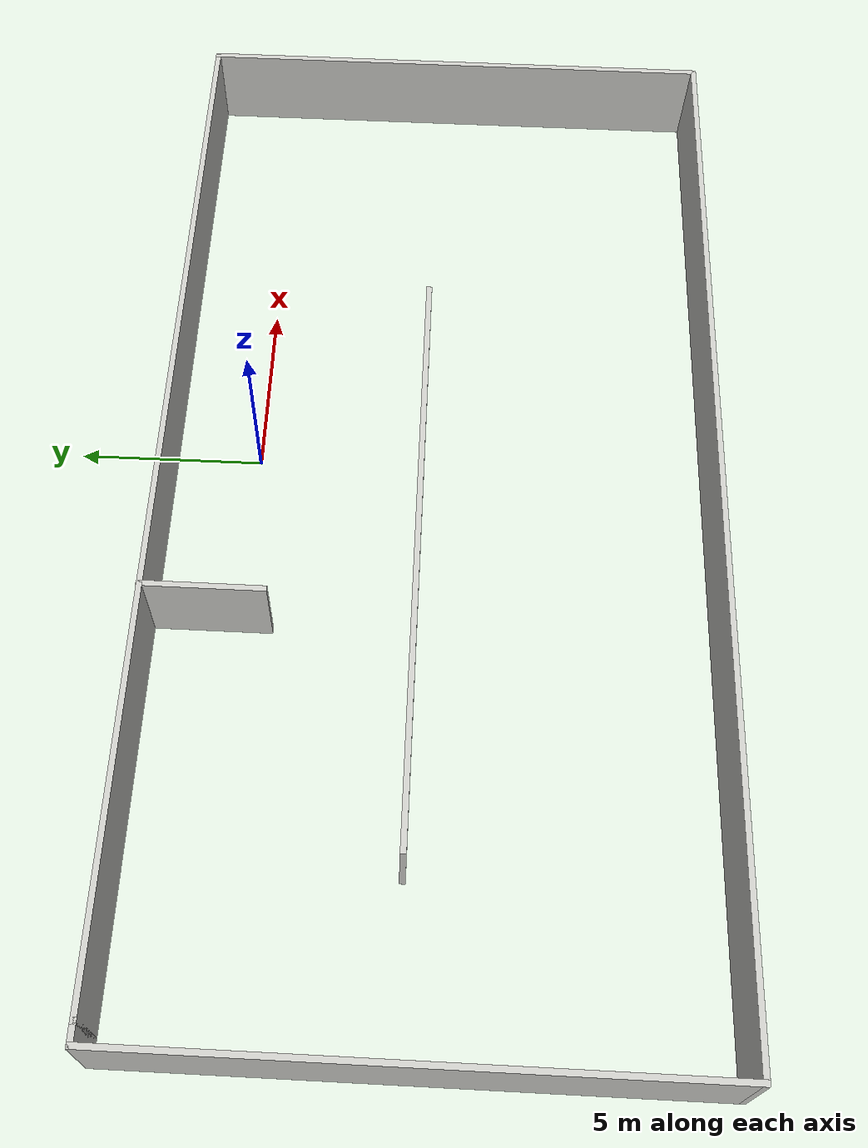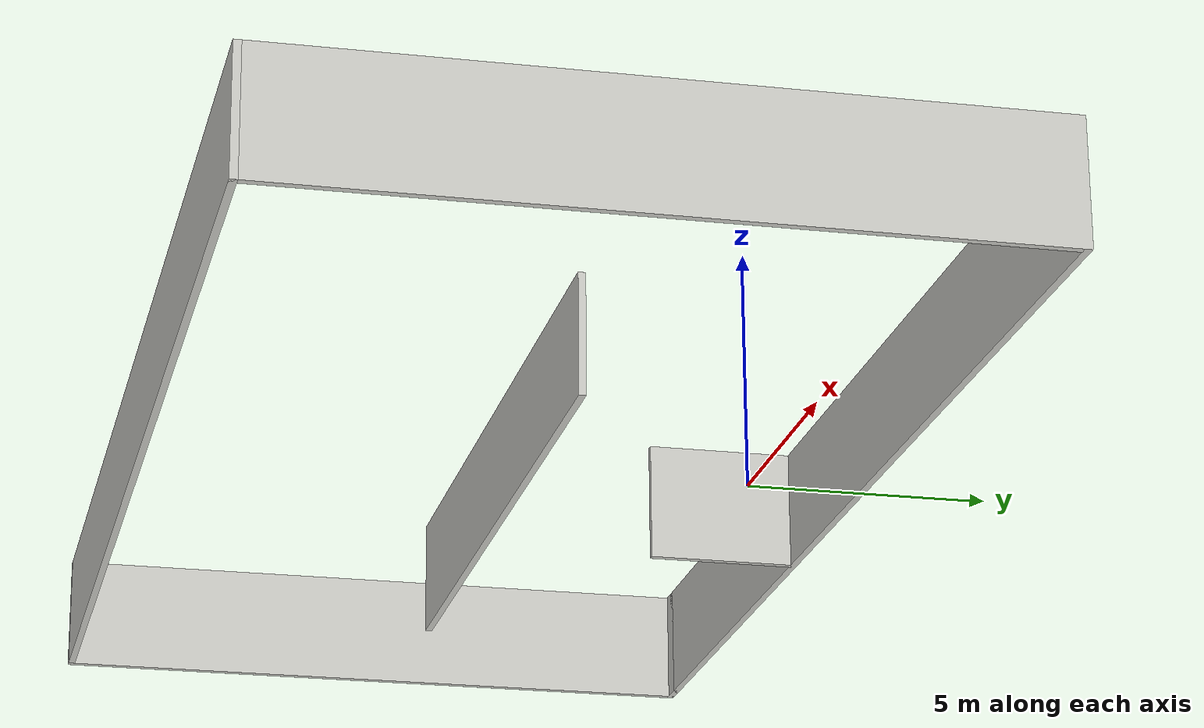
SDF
<?xml version='1.0'?>
<sdf version='1.6'>
  <model name='iwt'>
    <pose frame=''>-1.38186 -4.90432 0 0 -0 0</pose>
    <link name='Wall_10'>
      <collision name='Wall_10_Collision'>
        <geometry>
          <box>
            <size>14.75 0.15 2.5</size>
          </box>
        </geometry>
        <pose frame=''>0 0 1.25 0 -0 0</pose>
      </collision>
      <visual name='Wall_10_Visual'>
        <pose frame=''>0 0 1.25 0 -0 0</pose>
        <geometry>
          <box>
            <size>14.75 0.15 2.5</size>
          </box>
        </geometry>
        <material>
          <script>
            <uri>file://media/materials/scripts/gazebo.material</uri>
            <name>Gazebo/CeilingTiled</name>
          </script>
          <ambient>1 1 1 1</ambient>
        </material>
      </visual>
      <pose frame=''>-14.55 -0.004954 0 0 -0 1.5708</pose>
    </link>
    <link name='Wall_11'>
      <collision name='Wall_11_Collision'>
        <geometry>
          <box>
            <size>0.65 0.15 2.5</size>
          </box>
        </geometry>
        <pose frame=''>0 0 1.25 0 -0 0</pose>
      </collision>
      <visual name='Wall_11_Visual'>
        <pose frame=''>0 0 1.25 0 -0 0</pose>
        <geometry>
          <box>
            <size>0.65 0.15 2.5</size>
          </box>
        </geometry>
        <material>
          <script>
            <uri>file://media/materials/scripts/gazebo.material</uri>
            <name>Gazebo/CeilingTiled</name>
          </script>
          <ambient>1 1 1 1</ambient>
        </material>
      </visual>
      <pose frame=''>-14.3 7.29505 0 0 -0 0</pose>
    </link>
    <link name='Wall_17'>
      <collision name='Wall_17_Collision'>
        <geometry>
          <box>
            <size>16 0.15 2.5</size>
          </box>
        </geometry>
        <pose frame=''>0 0 1.25 0 -0 0</pose>
      </collision>
      <visual name='Wall_17_Visual'>
        <pose frame=''>0 0 1.25 0 -0 0</pose>
        <geometry>
          <box>
            <size>16 0.15 2.5</size>
          </box>
        </geometry>
        <material>
          <script>
            <uri>file://media/materials/scripts/gazebo.material</uri>
            <name>Gazebo/CeilingTiled</name>
          </script>
          <ambient>1 1 1 1</ambient>
        </material>
      </visual>
      <pose frame=''>-2.12058 0.465939 0 0 -0 0</pose>
    </link>
    <link name='Wall_20'>
      <collision name='Wall_20_Collision'>
        <geometry>
          <box>
            <size>3.25 0.15 2.5</size>
          </box>
        </geometry>
        <pose frame=''>0 0 1.25 0 -0 0</pose>
      </collision>
      <visual name='Wall_20_Visual'>
        <pose frame=''>0 0 1.25 0 -0 0</pose>
        <geometry>
          <box>
            <size>3.25 0.15 2.5</size>
          </box>
        </geometry>
        <material>
          <script>
            <uri>file://media/materials/scripts/gazebo.material</uri>
            <name>Gazebo/CeilingTiled</name>
          </script>
          <ambient>1 1 1 1</ambient>
        </material>
      </visual>
      <pose frame=''>-3.6718 5.75495 0 0 0 -1.5708</pose>
    </link>
    <link name='Wall_3'>
      <collision name='Wall_3_Collision'>
        <geometry>
          <box>
            <size>28.75 0.15 2.5</size>
          </box>
        </geometry>
        <pose frame=''>0 0 1.25 0 -0 0</pose>
      </collision>
      <visual name='Wall_3_Visual'>
        <pose frame=''>0 0 1.25 0 -0 0</pose>
        <geometry>
          <box>
            <size>28.75 0.15 2.5</size>
          </box>
        </geometry>
        <material>
          <script>
            <uri>file://media/materials/scripts/gazebo.material</uri>
            <name>Gazebo/CeilingTiled</name>
          </script>
          <ambient>1 1 1 1</ambient>
        </material>
      </visual>
      <pose frame=''>0.25 7.29505 0 0 -0 0</pose>
    </link>
    <link name='Wall_8'>
      <collision name='Wall_8_Collision'>
        <geometry>
          <box>
            <size>14.75 0.15 2.5</size>
          </box>
        </geometry>
        <pose frame=''>0 0 1.25 0 -0 0</pose>
      </collision>
      <visual name='Wall_8_Visual'>
        <pose frame=''>0 0 1.25 0 -0 0</pose>
        <geometry>
          <box>
            <size>14.75 0.15 2.5</size>
          </box>
        </geometry>
        <material>
          <script>
            <uri>file://media/materials/scripts/gazebo.material</uri>
            <name>Gazebo/CeilingTiled</name>
          </script>
          <ambient>1 1 1 1</ambient>
        </material>
      </visual>
      <pose frame=''>14.55 -0.004954 0 0 0 -1.5708</pose>
    </link>
    <link name='Wall_9'>
      <collision name='Wall_9_Collision'>
        <geometry>
          <box>
            <size>29.25 0.15 2.5</size>
          </box>
        </geometry>
        <pose frame=''>0 0 1.25 0 -0 0</pose>
      </collision>
      <visual name='Wall_9_Visual'>
        <pose frame=''>0 0 1.25 0 -0 0</pose>
        <geometry>
          <box>
            <size>29.25 0.15 2.5</size>
          </box>
        </geometry>
        <material>
          <script>
            <uri>file://media/materials/scripts/gazebo.material</uri>
            <name>Gazebo/CeilingTiled</name>
          </script>
          <ambient>1 1 1 1</ambient>
        </material>
      </visual>
      <pose frame=''>0 -7.30495 0 0 -0 3.14159</pose>
    </link>
    <static>1</static>
  </model>
</sdf>
